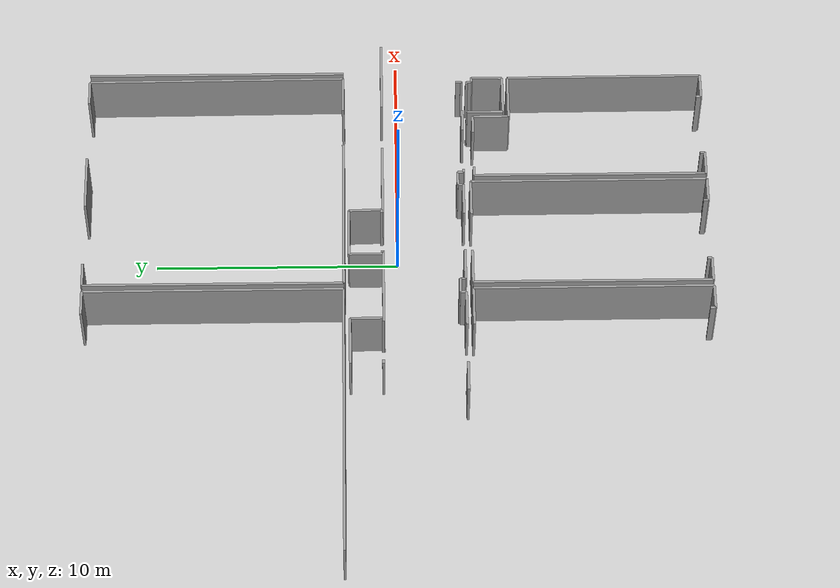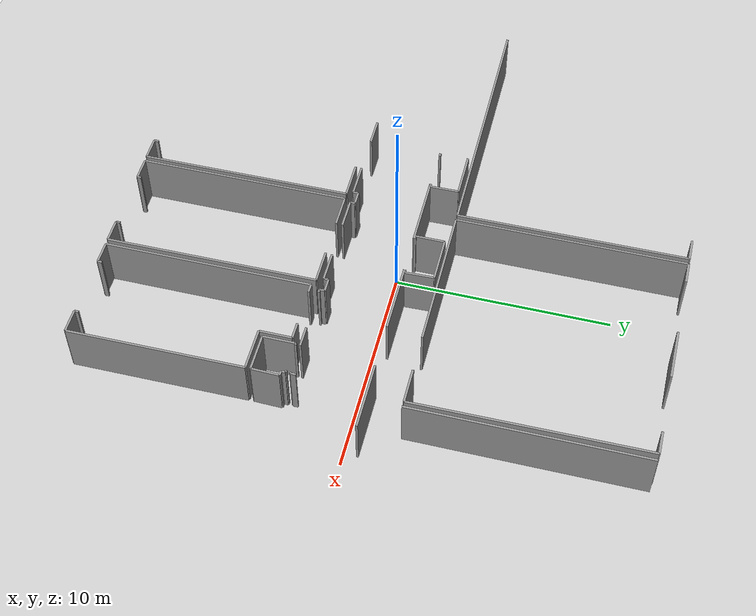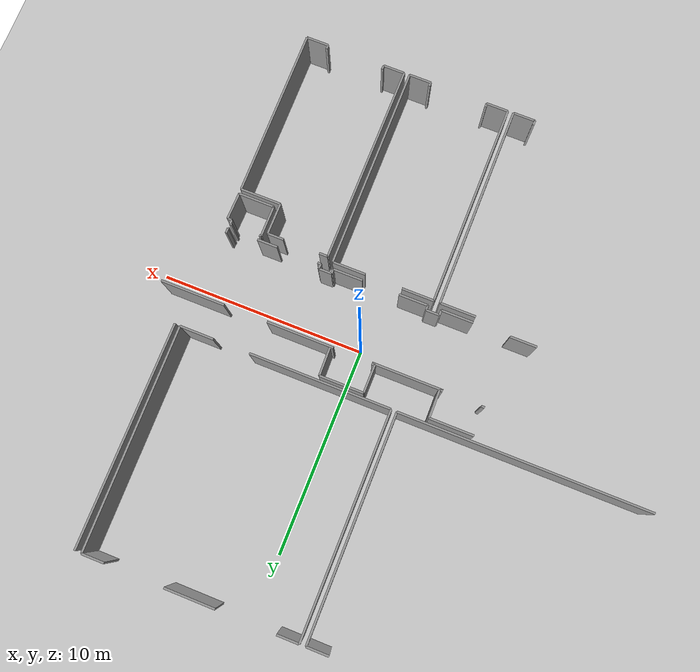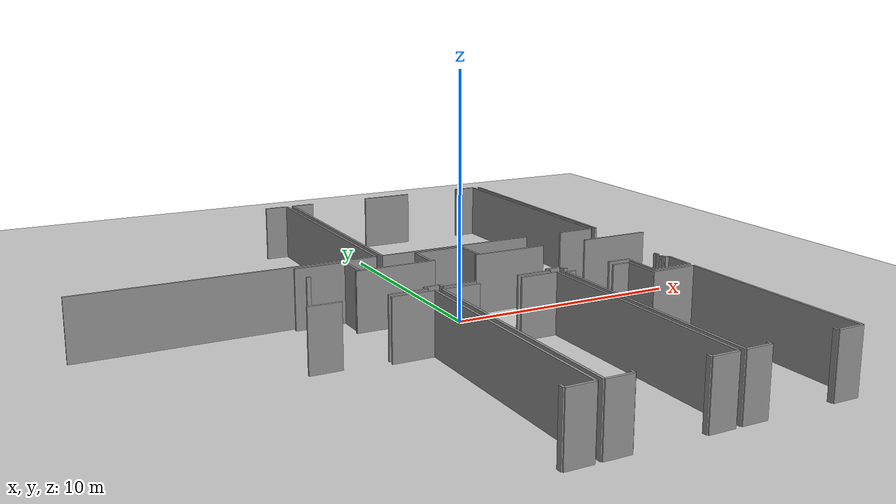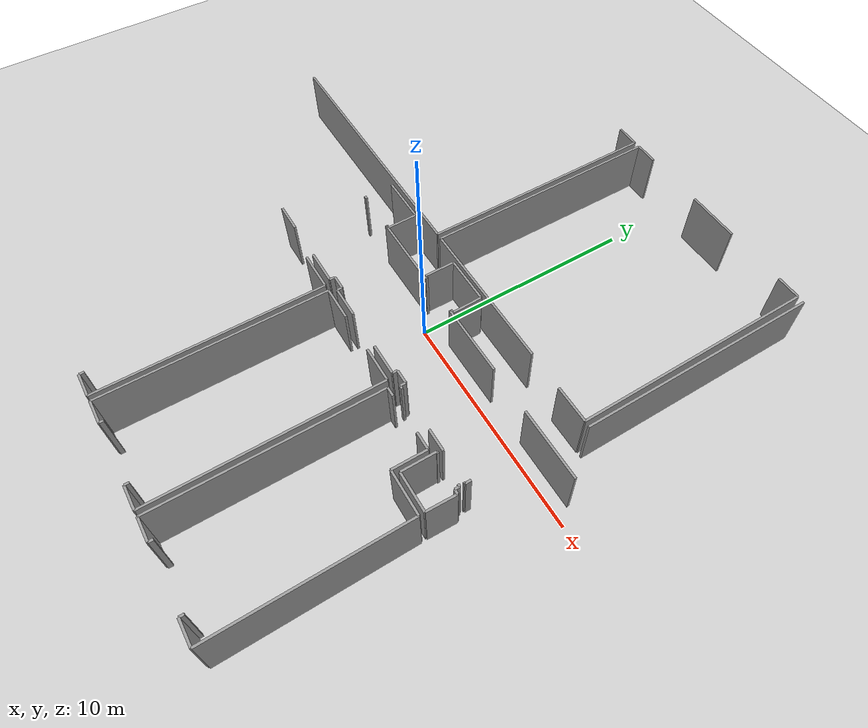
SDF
<sdf version="1.6">
 <world name="default">
  <model name="ground_plane">
   <static>1</static>
   <link name="link">
    <collision name="collision">
     <geometry><plane><normal>0 0 1</normal><size>100 100</size></plane></geometry>
     <surface><friction><ode><mu>100</mu><mu2>50</mu2></ode></friction></surface>
    </collision>
    <visual name="visual">
     <cast_shadows>0</cast_shadows>
     <geometry><plane><normal>0 0 1</normal><size>100 100</size></plane></geometry>
     <material>
      <script><uri>file://media/materials/scripts/gazebo.material</uri><name>Gazebo/Grey</name></script>
     </material>
    </visual>
   </link>
  </model>
  <model name="0510030968_A-40">
   <static>1</static>
   <link name="Wall_41">
    <collision name="Wall_41_Collision">
     <geometry><box><size>3.36242488916 0.1 2.5</size></box></geometry>
     <pose>1.68121244458 0 1.25 0 0 0</pose>
    </collision>
    <visual name="Wall_41_Visual">
     <pose>1.68121244458 0 1.25 0 0 0</pose>
     <geometry><box><size>3.36242488916 0.1 2.5</size></box></geometry>
     <material>
      <script><uri>file://media/materials/scripts/gazebo.material</uri><name>Gazebo/Grey</name></script>
      <ambient>1 1 1 1</ambient>
     </material>
    </visual>
    <pose>34.5855406075 -12.2775258203 0 0 0 0.0</pose>
   </link>
   <link name="Wall_42">
    <collision name="Wall_42_Collision">
     <geometry><box><size>3.2074393079 0.1 2.5</size></box></geometry>
     <pose>1.60371965395 0 1.25 0 0 0</pose>
    </collision>
    <visual name="Wall_42_Visual">
     <pose>1.60371965395 0 1.25 0 0 0</pose>
     <geometry><box><size>3.2074393079 0.1 2.5</size></box></geometry>
     <material>
      <script><uri>file://media/materials/scripts/gazebo.material</uri><name>Gazebo/Grey</name></script>
      <ambient>1 1 1 1</ambient>
     </material>
    </visual>
    <pose>39.8039813509 -12.2775258203 0 0 0 0.0</pose>
   </link>
   <link name="Wall_43">
    <collision name="Wall_43_Collision">
     <geometry><box><size>3.09310568238 0.1 2.5</size></box></geometry>
     <pose>1.54655284119 0 1.25 0 0 0</pose>
    </collision>
    <visual name="Wall_43_Visual">
     <pose>1.54655284119 0 1.25 0 0 0</pose>
     <geometry><box><size>3.09310568238 0.1 2.5</size></box></geometry>
     <material>
      <script><uri>file://media/materials/scripts/gazebo.material</uri><name>Gazebo/Grey</name></script>
      <ambient>1 1 1 1</ambient>
     </material>
    </visual>
    <pose>45.1056315662 -12.2775258203 0 0 0 0.0</pose>
   </link>
   <link name="Wall_59">
    <collision name="Wall_59_Collision">
     <geometry><box><size>0.244165809164 0.1 2.5</size></box></geometry>
     <pose>0.122082904582 0 1.25 0 0 0</pose>
    </collision>
    <visual name="Wall_59_Visual">
     <pose>0.122082904582 0 1.25 0 0 0</pose>
     <geometry><box><size>0.244165809164 0.1 2.5</size></box></geometry>
     <material>
      <script><uri>file://media/materials/scripts/gazebo.material</uri><name>Gazebo/Grey</name></script>
      <ambient>1 1 1 1</ambient>
     </material>
    </visual>
    <pose>46.354535869 -15.4020097311 0 0 0 -1.57079632679</pose>
   </link>
   <link name="Wall_60">
    <collision name="Wall_60_Collision">
     <geometry><box><size>0.0694894368434 0.1 2.5</size></box></geometry>
     <pose>0.0347447184217 0 1.25 0 0 0</pose>
    </collision>
    <visual name="Wall_60_Visual">
     <pose>0.0347447184217 0 1.25 0 0 0</pose>
     <geometry><box><size>0.0694894368434 0.1 2.5</size></box></geometry>
     <material>
      <script><uri>file://media/materials/scripts/gazebo.material</uri><name>Gazebo/Grey</name></script>
      <ambient>1 1 1 1</ambient>
     </material>
    </visual>
    <pose>46.354535869 -15.6461755402 0 0 0 3.14159265359</pose>
   </link>
   <link name="Wall_61">
    <collision name="Wall_61_Collision">
     <geometry><box><size>0.983142142104 0.1 2.5</size></box></geometry>
     <pose>0.491571071052 0 1.25 0 0 0</pose>
    </collision>
    <visual name="Wall_61_Visual">
     <pose>0.491571071052 0 1.25 0 0 0</pose>
     <geometry><box><size>0.983142142104 0.1 2.5</size></box></geometry>
     <material>
      <script><uri>file://media/materials/scripts/gazebo.material</uri><name>Gazebo/Grey</name></script>
      <ambient>1 1 1 1</ambient>
     </material>
    </visual>
    <pose>44.8927169481 -15.6461755402 0 0 0 3.14159265359</pose>
   </link>
   <link name="Wall_62">
    <collision name="Wall_62_Collision">
     <geometry><box><size>0.151555572494 0.1 2.5</size></box></geometry>
     <pose>0.0757777862469 0 1.25 0 0 0</pose>
    </collision>
    <visual name="Wall_62_Visual">
     <pose>0.0757777862469 0 1.25 0 0 0</pose>
     <geometry><box><size>0.151555572494 0.1 2.5</size></box></geometry>
     <material>
      <script><uri>file://media/materials/scripts/gazebo.material</uri><name>Gazebo/Grey</name></script>
      <ambient>1 1 1 1</ambient>
     </material>
    </visual>
    <pose>41.9332545702 -15.6461755402 0 0 0 3.14159265359</pose>
   </link>
   <link name="Wall_63">
    <collision name="Wall_63_Collision">
     <geometry><box><size>0.239973576229 0.1 2.5</size></box></geometry>
     <pose>0.119986788114 0 1.25 0 0 0</pose>
    </collision>
    <visual name="Wall_63_Visual">
     <pose>0.119986788114 0 1.25 0 0 0</pose>
     <geometry><box><size>0.239973576229 0.1 2.5</size></box></geometry>
     <material>
      <script><uri>file://media/materials/scripts/gazebo.material</uri><name>Gazebo/Grey</name></script>
      <ambient>1 1 1 1</ambient>
     </material>
    </visual>
    <pose>41.7816989977 -15.6461755402 0 0 0 1.57079632679</pose>
   </link>
   <link name="Wall_64">
    <collision name="Wall_64_Collision">
     <geometry><box><size>0.625277894229 0.1 2.5</size></box></geometry>
     <pose>0.312638947114 0 1.25 0 0 0</pose>
    </collision>
    <visual name="Wall_64_Visual">
     <pose>0.312638947114 0 1.25 0 0 0</pose>
     <geometry><box><size>0.625277894229 0.1 2.5</size></box></geometry>
     <material>
      <script><uri>file://media/materials/scripts/gazebo.material</uri><name>Gazebo/Grey</name></script>
      <ambient>1 1 1 1</ambient>
     </material>
    </visual>
    <pose>41.7816989977 -15.406201964 0 0 0 3.14159265359</pose>
   </link>
   <link name="Wall_65">
    <collision name="Wall_65_Collision">
     <geometry><box><size>0.221045009337 0.1 2.5</size></box></geometry>
     <pose>0.110522504669 0 1.25 0 0 0</pose>
    </collision>
    <visual name="Wall_65_Visual">
     <pose>0.110522504669 0 1.25 0 0 0</pose>
     <geometry><box><size>0.221045009337 0.1 2.5</size></box></geometry>
     <material>
      <script><uri>file://media/materials/scripts/gazebo.material</uri><name>Gazebo/Grey</name></script>
      <ambient>1 1 1 1</ambient>
     </material>
    </visual>
    <pose>41.1564211034 -15.406201964 0 0 0 -1.57079632679</pose>
   </link>
   <link name="Wall_66">
    <collision name="Wall_66_Collision">
     <geometry><box><size>1.41862621797 0.1 2.5</size></box></geometry>
     <pose>0.709313108985 0 1.25 0 0 0</pose>
    </collision>
    <visual name="Wall_66_Visual">
     <pose>0.709313108985 0 1.25 0 0 0</pose>
     <geometry><box><size>1.41862621797 0.1 2.5</size></box></geometry>
     <material>
      <script><uri>file://media/materials/scripts/gazebo.material</uri><name>Gazebo/Grey</name></script>
      <ambient>1 1 1 1</ambient>
     </material>
    </visual>
    <pose>41.1564211034 -15.6272469733 0 0 0 3.14159265359</pose>
   </link>
   <link name="Wall_67">
    <collision name="Wall_67_Collision">
     <geometry><box><size>1.38826428853 0.1 2.5</size></box></geometry>
     <pose>0.694132144264 0 1.25 0 0 0</pose>
    </collision>
    <visual name="Wall_67_Visual">
     <pose>0.694132144264 0 1.25 0 0 0</pose>
     <geometry><box><size>1.38826428853 0.1 2.5</size></box></geometry>
     <material>
      <script><uri>file://media/materials/scripts/gazebo.material</uri><name>Gazebo/Grey</name></script>
      <ambient>1 1 1 1</ambient>
     </material>
    </visual>
    <pose>37.9630829427 -15.6272469733 0 0 0 3.14159265359</pose>
   </link>
   <link name="Wall_68">
    <collision name="Wall_68_Collision">
     <geometry><box><size>0.221680196146 0.1 2.5</size></box></geometry>
     <pose>0.110840098073 0 1.25 0 0 0</pose>
    </collision>
    <visual name="Wall_68_Visual">
     <pose>0.110840098073 0 1.25 0 0 0</pose>
     <geometry><box><size>0.221680196146 0.1 2.5</size></box></geometry>
     <material>
      <script><uri>file://media/materials/scripts/gazebo.material</uri><name>Gazebo/Grey</name></script>
      <ambient>1 1 1 1</ambient>
     </material>
    </visual>
    <pose>36.5748186542 -15.6272469733 0 0 0 1.57079632679</pose>
   </link>
   <link name="Wall_69">
    <collision name="Wall_69_Collision">
     <geometry><box><size>0.639124966653 0.1 2.5</size></box></geometry>
     <pose>0.319562483326 0 1.25 0 0 0</pose>
    </collision>
    <visual name="Wall_69_Visual">
     <pose>0.319562483326 0 1.25 0 0 0</pose>
     <geometry><box><size>0.639124966653 0.1 2.5</size></box></geometry>
     <material>
      <script><uri>file://media/materials/scripts/gazebo.material</uri><name>Gazebo/Grey</name></script>
      <ambient>1 1 1 1</ambient>
     </material>
    </visual>
    <pose>36.5748186542 -15.4055667772 0 0 0 3.14159265359</pose>
   </link>
   <link name="Wall_70">
    <collision name="Wall_70_Collision">
     <geometry><box><size>0.239719501505 0.1 2.5</size></box></geometry>
     <pose>0.119859750753 0 1.25 0 0 0</pose>
    </collision>
    <visual name="Wall_70_Visual">
     <pose>0.119859750753 0 1.25 0 0 0</pose>
     <geometry><box><size>0.239719501505 0.1 2.5</size></box></geometry>
     <material>
      <script><uri>file://media/materials/scripts/gazebo.material</uri><name>Gazebo/Grey</name></script>
      <ambient>1 1 1 1</ambient>
     </material>
    </visual>
    <pose>35.9356936875 -15.4055667772 0 0 0 -1.57079632679</pose>
   </link>
   <link name="Wall_71">
    <collision name="Wall_71_Collision">
     <geometry><box><size>1.5325787314 0.1 2.5</size></box></geometry>
     <pose>0.766289365702 0 1.25 0 0 0</pose>
    </collision>
    <visual name="Wall_71_Visual">
     <pose>0.766289365702 0 1.25 0 0 0</pose>
     <geometry><box><size>1.5325787314 0.1 2.5</size></box></geometry>
     <material>
      <script><uri>file://media/materials/scripts/gazebo.material</uri><name>Gazebo/Grey</name></script>
      <ambient>1 1 1 1</ambient>
     </material>
    </visual>
    <pose>35.9356936875 -15.6452862787 0 0 0 3.14159265359</pose>
   </link>
   <link name="Wall_72">
    <collision name="Wall_72_Collision">
     <geometry><box><size>1.27799585858 0.1 2.5</size></box></geometry>
     <pose>0.638997929291 0 1.25 0 0 0</pose>
    </collision>
    <visual name="Wall_72_Visual">
     <pose>0.638997929291 0 1.25 0 0 0</pose>
     <geometry><box><size>1.27799585858 0.1 2.5</size></box></geometry>
     <material>
      <script><uri>file://media/materials/scripts/gazebo.material</uri><name>Gazebo/Grey</name></script>
      <ambient>1 1 1 1</ambient>
     </material>
    </visual>
    <pose>32.6431393473 -15.6452862787 0 0 0 3.14159265359</pose>
   </link>
   <link name="Wall_140">
    <collision name="Wall_140_Collision">
     <geometry><box><size>1.07028977222 0.1 2.5</size></box></geometry>
     <pose>0.535144886111 0 1.25 0 0 0</pose>
    </collision>
    <visual name="Wall_140_Visual">
     <pose>0.535144886111 0 1.25 0 0 0</pose>
     <geometry><box><size>1.07028977222 0.1 2.5</size></box></geometry>
     <material>
      <script><uri>file://media/materials/scripts/gazebo.material</uri><name>Gazebo/Grey</name></script>
      <ambient>1 1 1 1</ambient>
     </material>
    </visual>
    <pose>36.1380642047 -25.7187138738 0 0 0 3.14159265359</pose>
   </link>
   <link name="Wall_141">
    <collision name="Wall_141_Collision">
     <geometry><box><size>0.219520560997 0.1 2.5</size></box></geometry>
     <pose>0.109760280498 0 1.25 0 0 0</pose>
    </collision>
    <visual name="Wall_141_Visual">
     <pose>0.109760280498 0 1.25 0 0 0</pose>
     <geometry><box><size>0.219520560997 0.1 2.5</size></box></geometry>
     <material>
      <script><uri>file://media/materials/scripts/gazebo.material</uri><name>Gazebo/Grey</name></script>
      <ambient>1 1 1 1</ambient>
     </material>
    </visual>
    <pose>35.0677744325 -25.7187138738 0 0 0 1.57079632679</pose>
   </link>
   <link name="Wall_146">
    <collision name="Wall_146_Collision">
     <geometry><box><size>1.72148328824 0.1 2.5</size></box></geometry>
     <pose>0.860741644118 0 1.25 0 0 0</pose>
    </collision>
    <visual name="Wall_146_Visual">
     <pose>0.860741644118 0 1.25 0 0 0</pose>
     <geometry><box><size>1.72148328824 0.1 2.5</size></box></geometry>
     <material>
      <script><uri>file://media/materials/scripts/gazebo.material</uri><name>Gazebo/Grey</name></script>
      <ambient>1 1 1 1</ambient>
     </material>
    </visual>
    <pose>34.3885056595 -15.9359477622 0 0 0 0.0</pose>
   </link>
   <link name="Wall_147">
    <collision name="Wall_147_Collision">
     <geometry><box><size>9.78280639758 0.1 2.5</size></box></geometry>
     <pose>4.89140319879 0 1.25 0 0 0</pose>
    </collision>
    <visual name="Wall_147_Visual">
     <pose>4.89140319879 0 1.25 0 0 0</pose>
     <geometry><box><size>9.78280639758 0.1 2.5</size></box></geometry>
     <material>
      <script><uri>file://media/materials/scripts/gazebo.material</uri><name>Gazebo/Grey</name></script>
      <ambient>1 1 1 1</ambient>
     </material>
    </visual>
    <pose>36.1099889477 -15.9359477622 0 0 0 -1.5679264657</pose>
   </link>
   <link name="Wall_148">
    <collision name="Wall_148_Collision">
     <geometry><box><size>1.06622457665 0.1 2.5</size></box></geometry>
     <pose>0.533112288324 0 1.25 0 0 0</pose>
    </collision>
    <visual name="Wall_148_Visual">
     <pose>0.533112288324 0 1.25 0 0 0</pose>
     <geometry><box><size>1.06622457665 0.1 2.5</size></box></geometry>
     <material>
      <script><uri>file://media/materials/scripts/gazebo.material</uri><name>Gazebo/Grey</name></script>
      <ambient>1 1 1 1</ambient>
     </material>
    </visual>
    <pose>41.3443093614 -25.7187138738 0 0 0 3.14159265359</pose>
   </link>
   <link name="Wall_149">
    <collision name="Wall_149_Collision">
     <geometry><box><size>0.195256424915 0.1 2.5</size></box></geometry>
     <pose>0.0976282124573 0 1.25 0 0 0</pose>
    </collision>
    <visual name="Wall_149_Visual">
     <pose>0.0976282124573 0 1.25 0 0 0</pose>
     <geometry><box><size>0.195256424915 0.1 2.5</size></box></geometry>
     <material>
      <script><uri>file://media/materials/scripts/gazebo.material</uri><name>Gazebo/Grey</name></script>
      <ambient>1 1 1 1</ambient>
     </material>
    </visual>
    <pose>40.2780847847 -25.7187138738 0 0 0 1.57079632679</pose>
   </link>
   <link name="Wall_150">
    <collision name="Wall_150_Collision">
     <geometry><box><size>0.181536389852 0.1 2.5</size></box></geometry>
     <pose>0.0907681949261 0 1.25 0 0 0</pose>
    </collision>
    <visual name="Wall_150_Visual">
     <pose>0.0907681949261 0 1.25 0 0 0</pose>
     <geometry><box><size>0.181536389852 0.1 2.5</size></box></geometry>
     <material>
      <script><uri>file://media/materials/scripts/gazebo.material</uri><name>Gazebo/Grey</name></script>
      <ambient>1 1 1 1</ambient>
     </material>
    </visual>
    <pose>37.4609042519 -25.5234574488 0 0 0 -1.57079632679</pose>
   </link>
   <link name="Wall_151">
    <collision name="Wall_151_Collision">
     <geometry><box><size>1.05313972839 0.1 2.5</size></box></geometry>
     <pose>0.526569864197 0 1.25 0 0 0</pose>
    </collision>
    <visual name="Wall_151_Visual">
     <pose>0.526569864197 0 1.25 0 0 0</pose>
     <geometry><box><size>1.05313972839 0.1 2.5</size></box></geometry>
     <material>
      <script><uri>file://media/materials/scripts/gazebo.material</uri><name>Gazebo/Grey</name></script>
      <ambient>1 1 1 1</ambient>
     </material>
    </visual>
    <pose>37.4609042519 -25.7049938387 0 0 0 3.14159265359</pose>
   </link>
   <link name="Wall_152">
    <collision name="Wall_152_Collision">
     <geometry><box><size>9.77463572037 0.1 2.5</size></box></geometry>
     <pose>4.88731786018 0 1.25 0 0 0</pose>
    </collision>
    <visual name="Wall_152_Visual">
     <pose>4.88731786018 0 1.25 0 0 0</pose>
     <geometry><box><size>9.77463572037 0.1 2.5</size></box></geometry>
     <material>
      <script><uri>file://media/materials/scripts/gazebo.material</uri><name>Gazebo/Grey</name></script>
      <ambient>1 1 1 1</ambient>
     </material>
    </visual>
    <pose>36.4077645235 -25.7049938387 0 0 0 1.57079632679</pose>
   </link>
   <link name="Wall_153">
    <collision name="Wall_153_Collision">
     <geometry><box><size>1.52749723694 0.1 2.5</size></box></geometry>
     <pose>0.763748618469 0 1.25 0 0 0</pose>
    </collision>
    <visual name="Wall_153_Visual">
     <pose>0.763748618469 0 1.25 0 0 0</pose>
     <geometry><box><size>1.52749723694 0.1 2.5</size></box></geometry>
     <material>
      <script><uri>file://media/materials/scripts/gazebo.material</uri><name>Gazebo/Grey</name></script>
      <ambient>1 1 1 1</ambient>
     </material>
    </visual>
    <pose>36.4077645235 -15.9303581183 0 0 0 0.0</pose>
   </link>
   <link name="Wall_154">
    <collision name="Wall_154_Collision">
     <geometry><box><size>1.59050776833 0.1 2.5</size></box></geometry>
     <pose>0.795253884167 0 1.25 0 0 0</pose>
    </collision>
    <visual name="Wall_154_Visual">
     <pose>0.795253884167 0 1.25 0 0 0</pose>
     <geometry><box><size>1.59050776833 0.1 2.5</size></box></geometry>
     <material>
      <script><uri>file://media/materials/scripts/gazebo.material</uri><name>Gazebo/Grey</name></script>
      <ambient>1 1 1 1</ambient>
     </material>
    </visual>
    <pose>39.7212800285 -15.9303581183 0 0 0 0.0</pose>
   </link>
   <link name="Wall_155">
    <collision name="Wall_155_Collision">
     <geometry><box><size>9.78840978132 0.1 2.5</size></box></geometry>
     <pose>4.89420489066 0 1.25 0 0 0</pose>
    </collision>
    <visual name="Wall_155_Visual">
     <pose>4.89420489066 0 1.25 0 0 0</pose>
     <geometry><box><size>9.78840978132 0.1 2.5</size></box></geometry>
     <material>
      <script><uri>file://media/materials/scripts/gazebo.material</uri><name>Gazebo/Grey</name></script>
      <ambient>1 1 1 1</ambient>
     </material>
    </visual>
    <pose>41.3117877968 -15.9303581183 0 0 0 -1.5674738643</pose>
   </link>
   <link name="Wall_156">
    <collision name="Wall_156_Collision">
     <geometry><box><size>1.08159609741 0.1 2.5</size></box></geometry>
     <pose>0.540798048706 0 1.25 0 0 0</pose>
    </collision>
    <visual name="Wall_156_Visual">
     <pose>0.540798048706 0 1.25 0 0 0</pose>
     <geometry><box><size>1.08159609741 0.1 2.5</size></box></geometry>
     <material>
      <script><uri>file://media/materials/scripts/gazebo.material</uri><name>Gazebo/Grey</name></script>
      <ambient>1 1 1 1</ambient>
     </material>
    </visual>
    <pose>46.5699912344 -25.7090590343 0 0 0 3.14159265359</pose>
   </link>
   <link name="Wall_157">
    <collision name="Wall_157_Collision">
     <geometry><box><size>0.200337919382 0.1 2.5</size></box></geometry>
     <pose>0.100168959691 0 1.25 0 0 0</pose>
    </collision>
    <visual name="Wall_157_Visual">
     <pose>0.100168959691 0 1.25 0 0 0</pose>
     <geometry><box><size>0.200337919382 0.1 2.5</size></box></geometry>
     <material>
      <script><uri>file://media/materials/scripts/gazebo.material</uri><name>Gazebo/Grey</name></script>
      <ambient>1 1 1 1</ambient>
     </material>
    </visual>
    <pose>45.488395137 -25.7090590343 0 0 0 1.57079632679</pose>
   </link>
   <link name="Wall_158">
    <collision name="Wall_158_Collision">
     <geometry><box><size>0.197797172148 0.1 2.5</size></box></geometry>
     <pose>0.0988985860742 0 1.25 0 0 0</pose>
    </collision>
    <visual name="Wall_158_Visual">
     <pose>0.0988985860742 0 1.25 0 0 0</pose>
     <geometry><box><size>0.197797172148 0.1 2.5</size></box></geometry>
     <material>
      <script><uri>file://media/materials/scripts/gazebo.material</uri><name>Gazebo/Grey</name></script>
      <ambient>1 1 1 1</ambient>
     </material>
    </visual>
    <pose>42.6544456725 -25.5087211149 0 0 0 -1.57079632679</pose>
   </link>
   <link name="Wall_159">
    <collision name="Wall_159_Collision">
     <geometry><box><size>1.03802228235 0.1 2.5</size></box></geometry>
     <pose>0.519011141177 0 1.25 0 0 0</pose>
    </collision>
    <visual name="Wall_159_Visual">
     <pose>0.519011141177 0 1.25 0 0 0</pose>
     <geometry><box><size>1.03802228235 0.1 2.5</size></box></geometry>
     <material>
      <script><uri>file://media/materials/scripts/gazebo.material</uri><name>Gazebo/Grey</name></script>
      <ambient>1 1 1 1</ambient>
     </material>
    </visual>
    <pose>42.6544456725 -25.706518287 0 0 0 3.14159265359</pose>
   </link>
   <link name="Wall_160">
    <collision name="Wall_160_Collision">
     <geometry><box><size>9.62447755885 0.1 2.5</size></box></geometry>
     <pose>4.81223877943 0 1.25 0 0 0</pose>
    </collision>
    <visual name="Wall_160_Visual">
     <pose>4.81223877943 0 1.25 0 0 0</pose>
     <geometry><box><size>9.62447755885 0.1 2.5</size></box></geometry>
     <material>
      <script><uri>file://media/materials/scripts/gazebo.material</uri><name>Gazebo/Grey</name></script>
      <ambient>1 1 1 1</ambient>
     </material>
    </visual>
    <pose>41.6164233901 -25.706518287 0 0 0 1.57079632679</pose>
   </link>
   <link name="Wall_161">
    <collision name="Wall_161_Collision">
     <geometry><box><size>0.411601051869 0.1 2.5</size></box></geometry>
     <pose>0.205800525935 0 1.25 0 0 0</pose>
    </collision>
    <visual name="Wall_161_Visual">
     <pose>0.205800525935 0 1.25 0 0 0</pose>
     <geometry><box><size>0.411601051869 0.1 2.5</size></box></geometry>
     <material>
      <script><uri>file://media/materials/scripts/gazebo.material</uri><name>Gazebo/Grey</name></script>
      <ambient>1 1 1 1</ambient>
     </material>
    </visual>
    <pose>41.6164233901 -16.0820407282 0 0 0 0.0</pose>
   </link>
   <link name="Wall_162">
    <collision name="Wall_162_Collision">
     <geometry><box><size>0.783185334807 0.1 2.5</size></box></geometry>
     <pose>0.391592667403 0 1.25 0 0 0</pose>
    </collision>
    <visual name="Wall_162_Visual">
     <pose>0.391592667403 0 1.25 0 0 0</pose>
     <geometry><box><size>0.783185334807 0.1 2.5</size></box></geometry>
     <material>
      <script><uri>file://media/materials/scripts/gazebo.material</uri><name>Gazebo/Grey</name></script>
      <ambient>1 1 1 1</ambient>
     </material>
    </visual>
    <pose>43.790159686 -16.0820407282 0 0 0 0.0</pose>
   </link>
   <link name="Wall_163">
    <collision name="Wall_163_Collision">
     <geometry><box><size>1.50945793158 0.1 2.5</size></box></geometry>
     <pose>0.754728965789 0 1.25 0 0 0</pose>
    </collision>
    <visual name="Wall_163_Visual">
     <pose>0.754728965789 0 1.25 0 0 0</pose>
     <geometry><box><size>1.50945793158 0.1 2.5</size></box></geometry>
     <material>
      <script><uri>file://media/materials/scripts/gazebo.material</uri><name>Gazebo/Grey</name></script>
      <ambient>1 1 1 1</ambient>
     </material>
    </visual>
    <pose>44.5733450208 -16.0820407282 0 0 0 -1.57079632679</pose>
   </link>
   <link name="Wall_164">
    <collision name="Wall_164_Collision">
     <geometry><box><size>1.9580268557 0.1 2.5</size></box></geometry>
     <pose>0.979013427849 0 1.25 0 0 0</pose>
    </collision>
    <visual name="Wall_164_Visual">
     <pose>0.979013427849 0 1.25 0 0 0</pose>
     <geometry><box><size>1.9580268557 0.1 2.5</size></box></geometry>
     <material>
      <script><uri>file://media/materials/scripts/gazebo.material</uri><name>Gazebo/Grey</name></script>
      <ambient>1 1 1 1</ambient>
     </material>
    </visual>
    <pose>44.5733450208 -17.5914986598 0 0 0 0.0</pose>
   </link>
   <link name="Wall_165">
    <collision name="Wall_165_Collision">
     <geometry><box><size>8.11765223994 0.1 2.5</size></box></geometry>
     <pose>4.05882611997 0 1.25 0 0 0</pose>
    </collision>
    <visual name="Wall_165_Visual">
     <pose>4.05882611997 0 1.25 0 0 0</pose>
     <geometry><box><size>8.11765223994 0.1 2.5</size></box></geometry>
     <material>
      <script><uri>file://media/materials/scripts/gazebo.material</uri><name>Gazebo/Grey</name></script>
      <ambient>1 1 1 1</ambient>
     </material>
    </visual>
    <pose>46.5313718765 -17.5914986598 0 0 0 -1.56603885475</pose>
   </link>
   <link name="Wall_182">
    <collision name="Wall_182_Collision">
     <geometry><box><size>1.71792624211 0.1 2.5</size></box></geometry>
     <pose>0.858963121054 0 1.25 0 0 0</pose>
    </collision>
    <visual name="Wall_182_Visual">
     <pose>0.858963121054 0 1.25 0 0 0</pose>
     <geometry><box><size>1.71792624211 0.1 2.5</size></box></geometry>
     <material>
      <script><uri>file://media/materials/scripts/gazebo.material</uri><name>Gazebo/Grey</name></script>
      <ambient>1 1 1 1</ambient>
     </material>
    </visual>
    <pose>46.5250200084 -17.3578769516 0 0 0 3.14159265359</pose>
   </link>
   <link name="Wall_183">
    <collision name="Wall_183_Collision">
     <geometry><box><size>1.49700827013 0.1 2.5</size></box></geometry>
     <pose>0.748504135066 0 1.25 0 0 0</pose>
    </collision>
    <visual name="Wall_183_Visual">
     <pose>0.748504135066 0 1.25 0 0 0</pose>
     <geometry><box><size>1.49700827013 0.1 2.5</size></box></geometry>
     <material>
      <script><uri>file://media/materials/scripts/gazebo.material</uri><name>Gazebo/Grey</name></script>
      <ambient>1 1 1 1</ambient>
     </material>
    </visual>
    <pose>44.8070937663 -17.3578769516 0 0 0 1.57079632679</pose>
   </link>
   <link name="Wall_184">
    <collision name="Wall_184_Collision">
     <geometry><box><size>0.0884180037349 0.1 2.5</size></box></geometry>
     <pose>0.0442090018675 0 1.25 0 0 0</pose>
    </collision>
    <visual name="Wall_184_Visual">
     <pose>0.0442090018675 0 1.25 0 0 0</pose>
     <geometry><box><size>0.0884180037349 0.1 2.5</size></box></geometry>
     <material>
      <script><uri>file://media/materials/scripts/gazebo.material</uri><name>Gazebo/Grey</name></script>
      <ambient>1 1 1 1</ambient>
     </material>
    </visual>
    <pose>44.8070937663 -15.8608686815 0 0 0 0.0</pose>
   </link>
   <link name="Wall_185">
    <collision name="Wall_185_Collision">
     <geometry><box><size>0.100994702542 0.1 2.5</size></box></geometry>
     <pose>0.050497351271 0 1.25 0 0 0</pose>
    </collision>
    <visual name="Wall_185_Visual">
     <pose>0.050497351271 0 1.25 0 0 0</pose>
     <geometry><box><size>0.100994702542 0.1 2.5</size></box></geometry>
     <material>
      <script><uri>file://media/materials/scripts/gazebo.material</uri><name>Gazebo/Grey</name></script>
      <ambient>1 1 1 1</ambient>
     </material>
    </visual>
    <pose>46.2471892984 -15.8608686815 0 0 0 0.0</pose>
   </link>
   <link name="Wall_186">
    <collision name="Wall_186_Collision">
     <geometry><box><size>0.20846831053 0.1 2.5</size></box></geometry>
     <pose>0.104234155265 0 1.25 0 0 0</pose>
    </collision>
    <visual name="Wall_186_Visual">
     <pose>0.104234155265 0 1.25 0 0 0</pose>
     <geometry><box><size>0.20846831053 0.1 2.5</size></box></geometry>
     <material>
      <script><uri>file://media/materials/scripts/gazebo.material</uri><name>Gazebo/Grey</name></script>
      <ambient>1 1 1 1</ambient>
     </material>
    </visual>
    <pose>46.3481840009 -15.8608686815 0 0 0 -1.57079632679</pose>
   </link>
   <link name="Wall_187">
    <collision name="Wall_187_Collision">
     <geometry><box><size>0.20846831053 0.1 2.5</size></box></geometry>
     <pose>0.104234155265 0 1.25 0 0 0</pose>
    </collision>
    <visual name="Wall_187_Visual">
     <pose>0.104234155265 0 1.25 0 0 0</pose>
     <geometry><box><size>0.20846831053 0.1 2.5</size></box></geometry>
     <material>
      <script><uri>file://media/materials/scripts/gazebo.material</uri><name>Gazebo/Grey</name></script>
      <ambient>1 1 1 1</ambient>
     </material>
    </visual>
    <pose>46.3481840009 -16.069336992 0 0 0 0.0</pose>
   </link>
   <link name="Wall_188">
    <collision name="Wall_188_Collision">
     <geometry><box><size>1.28892817104 0.1 2.5</size></box></geometry>
     <pose>0.644464085518 0 1.25 0 0 0</pose>
    </collision>
    <visual name="Wall_188_Visual">
     <pose>0.644464085518 0 1.25 0 0 0</pose>
     <geometry><box><size>1.28892817104 0.1 2.5</size></box></geometry>
     <material>
      <script><uri>file://media/materials/scripts/gazebo.material</uri><name>Gazebo/Grey</name></script>
      <ambient>1 1 1 1</ambient>
     </material>
    </visual>
    <pose>46.5566523114 -16.069336992 0 0 0 -1.59534034711</pose>
   </link>
   <link name="Wall_196">
    <collision name="Wall_196_Collision">
     <geometry><box><size>11.966919471 0.1 2.5</size></box></geometry>
     <pose>5.98345973551 0 1.25 0 0 0</pose>
    </collision>
    <visual name="Wall_196_Visual">
     <pose>5.98345973551 0 1.25 0 0 0</pose>
     <geometry><box><size>11.966919471 0.1 2.5</size></box></geometry>
     <material>
      <script><uri>file://media/materials/scripts/gazebo.material</uri><name>Gazebo/Grey</name></script>
      <ambient>1 1 1 1</ambient>
     </material>
    </visual>
    <pose>36.1360316069 -10.6478905446 0 0 0 3.14159265359</pose>
   </link>
   <link name="Wall_202">
    <collision name="Wall_202_Collision">
     <geometry><box><size>1.0547912141 0.1 2.5</size></box></geometry>
     <pose>0.527395607048 0 1.25 0 0 0</pose>
    </collision>
    <visual name="Wall_202_Visual">
     <pose>0.527395607048 0 1.25 0 0 0</pose>
     <geometry><box><size>1.0547912141 0.1 2.5</size></box></geometry>
     <material>
      <script><uri>file://media/materials/scripts/gazebo.material</uri><name>Gazebo/Grey</name></script>
      <ambient>1 1 1 1</ambient>
     </material>
    </visual>
    <pose>35.0551977337 -0.0154985581259 0 0 0 0.0</pose>
   </link>
   <link name="Wall_203">
    <collision name="Wall_203_Collision">
     <geometry><box><size>10.6324238805 0.1 2.5</size></box></geometry>
     <pose>5.31621194024 0 1.25 0 0 0</pose>
    </collision>
    <visual name="Wall_203_Visual">
     <pose>5.31621194024 0 1.25 0 0 0</pose>
     <geometry><box><size>10.6324238805 0.1 2.5</size></box></geometry>
     <material>
      <script><uri>file://media/materials/scripts/gazebo.material</uri><name>Gazebo/Grey</name></script>
      <ambient>1 1 1 1</ambient>
     </material>
    </visual>
    <pose>36.1099889477 -0.0154985581259 0 0 0 -1.56834696196</pose>
   </link>
   <link name="Wall_204">
    <collision name="Wall_204_Collision">
     <geometry><box><size>1.62607822961 0.1 2.5</size></box></geometry>
     <pose>0.813039114804 0 1.25 0 0 0</pose>
    </collision>
    <visual name="Wall_204_Visual">
     <pose>0.813039114804 0 1.25 0 0 0</pose>
     <geometry><box><size>1.62607822961 0.1 2.5</size></box></geometry>
     <material>
      <script><uri>file://media/materials/scripts/gazebo.material</uri><name>Gazebo/Grey</name></script>
      <ambient>1 1 1 1</ambient>
     </material>
    </visual>
    <pose>46.5657990015 -10.6605942808 0 0 0 3.14159265359</pose>
   </link>
   <link name="Wall_205">
    <collision name="Wall_205_Collision">
     <geometry><box><size>6.7909092064 0.1 2.5</size></box></geometry>
     <pose>3.3954546032 0 1.25 0 0 0</pose>
    </collision>
    <visual name="Wall_205_Visual">
     <pose>3.3954546032 0 1.25 0 0 0</pose>
     <geometry><box><size>6.7909092064 0.1 2.5</size></box></geometry>
     <material>
      <script><uri>file://media/materials/scripts/gazebo.material</uri><name>Gazebo/Grey</name></script>
      <ambient>1 1 1 1</ambient>
     </material>
    </visual>
    <pose>43.2012144772 -10.6605942808 0 0 0 3.14159265359</pose>
   </link>
   <link name="Wall_206">
    <collision name="Wall_206_Collision">
     <geometry><box><size>10.6528450017 0.1 2.5</size></box></geometry>
     <pose>5.32642250086 0 1.25 0 0 0</pose>
    </collision>
    <visual name="Wall_206_Visual">
     <pose>5.32642250086 0 1.25 0 0 0</pose>
     <geometry><box><size>10.6528450017 0.1 2.5</size></box></geometry>
     <material>
      <script><uri>file://media/materials/scripts/gazebo.material</uri><name>Gazebo/Grey</name></script>
      <ambient>1 1 1 1</ambient>
     </material>
    </visual>
    <pose>36.4103052708 -10.6605942808 0 0 0 1.57079632679</pose>
   </link>
   <link name="Wall_207">
    <collision name="Wall_207_Collision">
     <geometry><box><size>1.03865746916 0.1 2.5</size></box></geometry>
     <pose>0.519328734581 0 1.25 0 0 0</pose>
    </collision>
    <visual name="Wall_207_Visual">
     <pose>0.519328734581 0 1.25 0 0 0</pose>
     <geometry><box><size>1.03865746916 0.1 2.5</size></box></geometry>
     <material>
      <script><uri>file://media/materials/scripts/gazebo.material</uri><name>Gazebo/Grey</name></script>
      <ambient>1 1 1 1</ambient>
     </material>
    </visual>
    <pose>36.4103052708 -0.00774927906297 0 0 0 0.0</pose>
   </link>
   <link name="Wall_208">
    <collision name="Wall_208_Collision">
     <geometry><box><size>2.38118830748 0.1 2.5</size></box></geometry>
     <pose>1.19059415374 0 1.25 0 0 0</pose>
    </collision>
    <visual name="Wall_208_Visual">
     <pose>1.19059415374 0 1.25 0 0 0</pose>
     <geometry><box><size>2.38118830748 0.1 2.5</size></box></geometry>
     <material>
      <script><uri>file://media/materials/scripts/gazebo.material</uri><name>Gazebo/Grey</name></script>
      <ambient>1 1 1 1</ambient>
     </material>
    </visual>
    <pose>40.2595373299 -0.00774927906297 0 0 0 0.0</pose>
   </link>
   <link name="Wall_209">
    <collision name="Wall_209_Collision">
     <geometry><box><size>1.06749495026 0.1 2.5</size></box></geometry>
     <pose>0.533747475132 0 1.25 0 0 0</pose>
    </collision>
    <visual name="Wall_209_Visual">
     <pose>0.533747475132 0 1.25 0 0 0</pose>
     <geometry><box><size>1.06749495026 0.1 2.5</size></box></geometry>
     <material>
      <script><uri>file://media/materials/scripts/gazebo.material</uri><name>Gazebo/Grey</name></script>
      <ambient>1 1 1 1</ambient>
     </material>
    </visual>
    <pose>45.4260197924 -0.00774927906297 0 0 0 0.0</pose>
   </link>
   <link name="Wall_210">
    <collision name="Wall_210_Collision">
     <geometry><box><size>10.6530902392 0.1 2.5</size></box></geometry>
     <pose>5.3265451196 0 1.25 0 0 0</pose>
    </collision>
    <visual name="Wall_210_Visual">
     <pose>5.3265451196 0 1.25 0 0 0</pose>
     <geometry><box><size>10.6530902392 0.1 2.5</size></box></geometry>
     <material>
      <script><uri>file://media/materials/scripts/gazebo.material</uri><name>Gazebo/Grey</name></script>
      <ambient>1 1 1 1</ambient>
     </material>
    </visual>
    <pose>46.4935147427 -0.00774927906297 0 0 0 -1.56401098922</pose>
   </link>
   <link name="Wall_213">
    <collision name="Wall_213_Collision">
     <geometry><box><size>10.6769821004 0.1 2.5</size></box></geometry>
     <pose>5.33849105022 0 1.25 0 0 0</pose>
    </collision>
    <visual name="Wall_213_Visual">
     <pose>5.33849105022 0 1.25 0 0 0</pose>
     <geometry><box><size>10.6769821004 0.1 2.5</size></box></geometry>
     <material>
      <script><uri>file://media/materials/scripts/gazebo.material</uri><name>Gazebo/Grey</name></script>
      <ambient>1 1 1 1</ambient>
     </material>
    </visual>
    <pose>46.8197466875 -10.6910832476 0 0 0 1.57079632679</pose>
   </link>
   <link name="Wall_223">
    <collision name="Wall_223_Collision">
     <geometry><box><size>0.145203704409 0.1 2.5</size></box></geometry>
     <pose>0.0726018522047 0 1.25 0 0 0</pose>
    </collision>
    <visual name="Wall_223_Visual">
     <pose>0.0726018522047 0 1.25 0 0 0</pose>
     <geometry><box><size>0.145203704409 0.1 2.5</size></box></geometry>
     <material>
      <script><uri>file://media/materials/scripts/gazebo.material</uri><name>Gazebo/Grey</name></script>
      <ambient>1 1 1 1</ambient>
     </material>
    </visual>
    <pose>34.7298550504 -12.2460205546 0 0 0 3.14159265359</pose>
   </link>
   <link name="Wall_224">
    <collision name="Wall_224_Collision">
     <geometry><box><size>0.159813001004 0.1 2.5</size></box></geometry>
     <pose>0.0799065005018 0 1.25 0 0 0</pose>
    </collision>
    <visual name="Wall_224_Visual">
     <pose>0.0799065005018 0 1.25 0 0 0</pose>
     <geometry><box><size>0.159813001004 0.1 2.5</size></box></geometry>
     <material>
      <script><uri>file://media/materials/scripts/gazebo.material</uri><name>Gazebo/Grey</name></script>
      <ambient>1 1 1 1</ambient>
     </material>
    </visual>
    <pose>32.7615381684 -12.2460205546 0 0 0 3.14159265359</pose>
   </link>
   <link name="Wall_226">
    <collision name="Wall_226_Collision">
     <geometry><box><size>2.11364762377 0.1 2.5</size></box></geometry>
     <pose>1.05682381188 0 1.25 0 0 0</pose>
    </collision>
    <visual name="Wall_226_Visual">
     <pose>1.05682381188 0 1.25 0 0 0</pose>
     <geometry><box><size>2.11364762377 0.1 2.5</size></box></geometry>
     <material>
      <script><uri>file://media/materials/scripts/gazebo.material</uri><name>Gazebo/Grey</name></script>
      <ambient>1 1 1 1</ambient>
     </material>
    </visual>
    <pose>32.6017251674 -10.9094604723 0 0 0 0.0</pose>
   </link>
   <link name="Wall_227">
    <collision name="Wall_227_Collision">
     <geometry><box><size>1.33663854107 0.1 2.5</size></box></geometry>
     <pose>0.668319270537 0 1.25 0 0 0</pose>
    </collision>
    <visual name="Wall_227_Visual">
     <pose>0.668319270537 0 1.25 0 0 0</pose>
     <geometry><box><size>1.33663854107 0.1 2.5</size></box></geometry>
     <material>
      <script><uri>file://media/materials/scripts/gazebo.material</uri><name>Gazebo/Grey</name></script>
      <ambient>1 1 1 1</ambient>
     </material>
    </visual>
    <pose>34.7153727911 -10.9094604723 0 0 0 -1.55996127891</pose>
   </link>
   <link name="Wall_228">
    <collision name="Wall_228_Collision">
     <geometry><box><size>0.152571871387 0.1 2.5</size></box></geometry>
     <pose>0.0762859356937 0 1.25 0 0 0</pose>
    </collision>
    <visual name="Wall_228_Visual">
     <pose>0.0762859356937 0 1.25 0 0 0</pose>
     <geometry><box><size>0.152571871387 0.1 2.5</size></box></geometry>
     <material>
      <script><uri>file://media/materials/scripts/gazebo.material</uri><name>Gazebo/Grey</name></script>
      <ambient>1 1 1 1</ambient>
     </material>
    </visual>
    <pose>39.9523609894 -12.2314112581 0 0 0 3.14159265359</pose>
   </link>
   <link name="Wall_229">
    <collision name="Wall_229_Collision">
     <geometry><box><size>0.152444834026 0.1 2.5</size></box></geometry>
     <pose>0.0762224170128 0 1.25 0 0 0</pose>
    </collision>
    <visual name="Wall_229_Visual">
     <pose>0.0762224170128 0 1.25 0 0 0</pose>
     <geometry><box><size>0.152444834026 0.1 2.5</size></box></geometry>
     <material>
      <script><uri>file://media/materials/scripts/gazebo.material</uri><name>Gazebo/Grey</name></script>
      <ambient>1 1 1 1</ambient>
     </material>
    </visual>
    <pose>37.9548255142 -12.2314112581 0 0 0 3.14159265359</pose>
   </link>
   <link name="Wall_230">
    <collision name="Wall_230_Collision">
     <geometry><box><size>1.35091530419 0.1 2.5</size></box></geometry>
     <pose>0.675457652095 0 1.25 0 0 0</pose>
    </collision>
    <visual name="Wall_230_Visual">
     <pose>0.675457652095 0 1.25 0 0 0</pose>
     <geometry><box><size>1.35091530419 0.1 2.5</size></box></geometry>
     <material>
      <script><uri>file://media/materials/scripts/gazebo.material</uri><name>Gazebo/Grey</name></script>
      <ambient>1 1 1 1</ambient>
     </material>
    </visual>
    <pose>37.8023806802 -12.2314112581 0 0 0 1.57079632679</pose>
   </link>
   <link name="Wall_231">
    <collision name="Wall_231_Collision">
     <geometry><box><size>2.11364762377 0.1 2.5</size></box></geometry>
     <pose>1.05682381188 0 1.25 0 0 0</pose>
    </collision>
    <visual name="Wall_231_Visual">
     <pose>1.05682381188 0 1.25 0 0 0</pose>
     <geometry><box><size>2.11364762377 0.1 2.5</size></box></geometry>
     <material>
      <script><uri>file://media/materials/scripts/gazebo.material</uri><name>Gazebo/Grey</name></script>
      <ambient>1 1 1 1</ambient>
     </material>
    </visual>
    <pose>37.8023806802 -10.8804959539 0 0 0 0.0</pose>
   </link>
   <link name="Wall_232">
    <collision name="Wall_232_Collision">
     <geometry><box><size>1.35140379722 0.1 2.5</size></box></geometry>
     <pose>0.675701898608 0 1.25 0 0 0</pose>
    </collision>
    <visual name="Wall_232_Visual">
     <pose>0.675701898608 0 1.25 0 0 0</pose>
     <geometry><box><size>1.35140379722 0.1 2.5</size></box></geometry>
     <material>
      <script><uri>file://media/materials/scripts/gazebo.material</uri><name>Gazebo/Grey</name></script>
      <ambient>1 1 1 1</ambient>
     </material>
    </visual>
    <pose>39.9160283039 -10.8804959539 0 0 0 -1.54390794311</pose>
   </link>
   <pose>-38.75 12.8899291132 0 0 0 0</pose>
  </model>
 </world>
</sdf>
